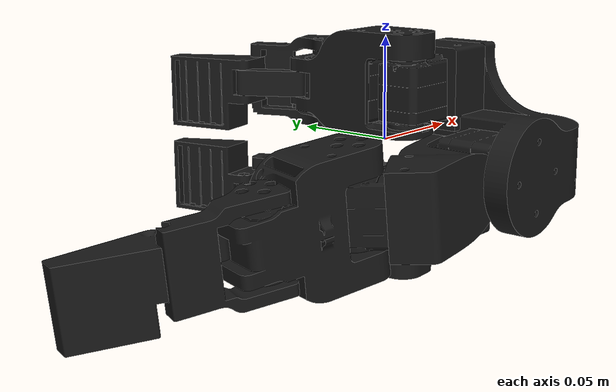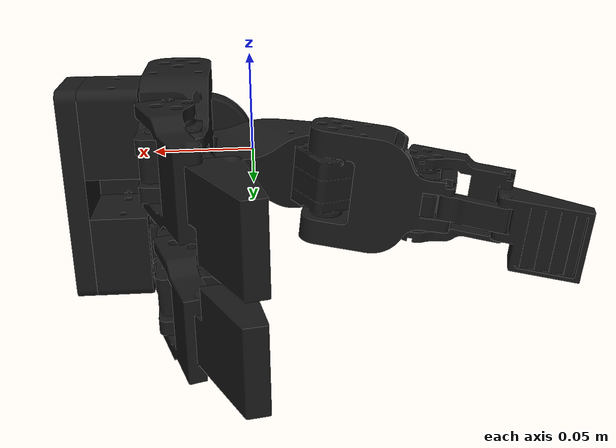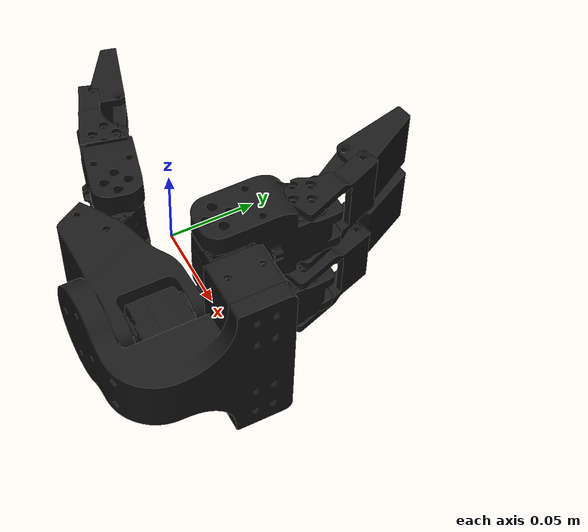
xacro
<?xml version="1.0"?>
<robot xmlns:xacro="http://www.ros.org/wiki/xacro" name="Hand">

  <!-- Materials (shared across all assemblies) -->
  <material name="Steel">
    <color rgba="0.098 0.098 0.098 1.0"/>
  </material>
  <material name="PPS">
    <color rgba="0.098 0.098 0.098 1.0"/>
  </material>

  <!-- Assembly includes -->
  <xacro:include filename="$(find Hand_description)/urdf/assemblies/Hand.urdf.xacro"/>

  <!-- Instantiate assemblies -->
  <xacro:Hand prefix=""/>

</robot>

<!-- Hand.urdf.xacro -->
<robot xmlns:xacro="http://www.ros.org/wiki/xacro" name="Hand_macro">

  <xacro:macro name="Hand" params="prefix">

    <!-- Links -->
    <link name="${prefix}base_link">
      <inertial>
        <origin xyz="0.066591 -0.028996 -0.014407" rpy="0 0 0"/>
        <mass value="1.013808"/>
        <inertia ixx="1.383921e-03" ixy="-5.654158e-04" ixz="3.315812e-08"
                 iyy="1.020927e-03" iyz="-8.614328e-08" izz="1.605222e-03"/>
      </inertial>
      <visual>
        <origin xyz="0.000000 0.000000 0.000000" rpy="0 0 0"/>
        <geometry>
          <mesh filename="package://Hand_description/meshes/Hand/base_link.dae" scale="1 1 1"/>
        </geometry>
        <material name="Steel"/>
      </visual>
      <collision>
        <origin xyz="0.000000 0.000000 0.000000" rpy="0 0 0"/>
        <geometry>
          <mesh filename="package://Hand_description/meshes/Hand/base_link_collision.stl" scale="0.01 0.01 0.01"/>
        </geometry>
      </collision>
    </link>

    <link name="${prefix}MOTOR_BASE_HOLDER_1">
      <inertial>
        <origin xyz="0.074767 -0.027619 -0.015090" rpy="0 0 0"/>
        <mass value="0.224905"/>
        <inertia ixx="6.913794e-05" ixy="1.514377e-08" ixz="-2.063933e-07"
                 iyy="4.187085e-05" iyz="2.578137e-07" izz="5.435582e-05"/>
      </inertial>
      <visual>
        <origin xyz="0.000000 0.000000 0.000000" rpy="0 0 0"/>
        <geometry>
          <mesh filename="package://Hand_description/meshes/Hand/MOTOR_BASE_HOLDER_1.dae" scale="1 1 1"/>
        </geometry>
        <material name="Steel"/>
      </visual>
      <collision>
        <origin xyz="0.000000 0.000000 0.000000" rpy="0 0 0"/>
        <geometry>
          <mesh filename="package://Hand_description/meshes/Hand/MOTOR_BASE_HOLDER_1_collision.stl" scale="0.01 0.01 0.01"/>
        </geometry>
      </collision>
    </link>

    <link name="${prefix}MOTOR_BASE_HOLDER_2">
      <inertial>
        <origin xyz="0.074767 -0.027368 -0.015090" rpy="0 0 0"/>
        <mass value="0.224905"/>
        <inertia ixx="6.913068e-05" ixy="1.725252e-07" ixz="-2.063933e-07"
                 iyy="4.187085e-05" iyz="-4.075756e-07" izz="5.434856e-05"/>
      </inertial>
      <visual>
        <origin xyz="0.000000 0.000000 0.000000" rpy="0 0 0"/>
        <geometry>
          <mesh filename="package://Hand_description/meshes/Hand/MOTOR_BASE_HOLDER_2.dae" scale="1 1 1"/>
        </geometry>
        <material name="Steel"/>
      </visual>
      <collision>
        <origin xyz="0.000000 0.000000 0.000000" rpy="0 0 0"/>
        <geometry>
          <mesh filename="package://Hand_description/meshes/Hand/MOTOR_BASE_HOLDER_2_collision.stl" scale="0.01 0.01 0.01"/>
        </geometry>
      </collision>
    </link>

    <link name="${prefix}Hand_ST3215_Servo_3">
      <inertial>
        <origin xyz="-0.012382 -0.018839 0.000000" rpy="0 0 0"/>
        <mass value="0.055721"/>
        <inertia ixx="7.436440e-06" ixy="1.103230e-07" ixz="-4.448752e-10"
                 iyy="1.201054e-05" iyz="-3.696328e-10" izz="1.401069e-05"/>
      </inertial>
      <visual>
        <origin xyz="0.000000 0.000000 0.000000" rpy="0 0 0"/>
        <geometry>
          <mesh filename="package://Hand_description/meshes/Hand/Hand_ST3215_Servo_3.dae" scale="1 1 1"/>
        </geometry>
        <material name="PPS"/>
      </visual>
      <collision>
        <origin xyz="0.000000 0.000000 0.000000" rpy="0 0 0"/>
        <geometry>
          <mesh filename="package://Hand_description/meshes/Hand/Hand_ST3215_Servo_3_collision.stl" scale="0.01 0.01 0.01"/>
        </geometry>
      </collision>
    </link>

    <link name="${prefix}Hand_ST3215_Servo">
      <inertial>
        <origin xyz="-0.012382 -0.018839 0.000000" rpy="0 0 0"/>
        <mass value="0.055721"/>
        <inertia ixx="7.436440e-06" ixy="1.103230e-07" ixz="-4.448752e-10"
                 iyy="1.201054e-05" iyz="-3.696328e-10" izz="1.401069e-05"/>
      </inertial>
      <visual>
        <origin xyz="0.000000 0.000000 0.000000" rpy="0 0 0"/>
        <geometry>
          <mesh filename="package://Hand_description/meshes/Hand/Hand_ST3215_Servo.dae" scale="1 1 1"/>
        </geometry>
        <material name="PPS"/>
      </visual>
      <collision>
        <origin xyz="0.000000 0.000000 0.000000" rpy="0 0 0"/>
        <geometry>
          <mesh filename="package://Hand_description/meshes/Hand/Hand_ST3215_Servo_collision.stl" scale="0.01 0.01 0.01"/>
        </geometry>
      </collision>
    </link>

    <link name="${prefix}Hand_ST3215_Servo_2">
      <inertial>
        <origin xyz="-0.012382 -0.018839 0.000000" rpy="0 0 0"/>
        <mass value="0.055721"/>
        <inertia ixx="7.436440e-06" ixy="1.103230e-07" ixz="-4.448752e-10"
                 iyy="1.201054e-05" iyz="-3.696328e-10" izz="1.401069e-05"/>
      </inertial>
      <visual>
        <origin xyz="0.000000 0.000000 0.000000" rpy="0 0 0"/>
        <geometry>
          <mesh filename="package://Hand_description/meshes/Hand/Hand_ST3215_Servo_2.dae" scale="1 1 1"/>
        </geometry>
        <material name="PPS"/>
      </visual>
      <collision>
        <origin xyz="0.000000 0.000000 0.000000" rpy="0 0 0"/>
        <geometry>
          <mesh filename="package://Hand_description/meshes/Hand/Hand_ST3215_Servo_2_collision.stl" scale="0.01 0.01 0.01"/>
        </geometry>
      </collision>
    </link>

    <link name="${prefix}MOTOR_BASE_HOLDER_THUMB">
      <inertial>
        <origin xyz="-0.028833 -0.000144 0.029185" rpy="0 0 0"/>
        <mass value="0.593673"/>
        <inertia ixx="3.008634e-04" ixy="6.580482e-08" ixz="1.702190e-05"
                 iyy="3.422514e-04" iyz="9.817237e-07" izz="1.660279e-04"/>
      </inertial>
      <visual>
        <origin xyz="-0.108578 0.027228 0.067178" rpy="0 0 0"/>
        <geometry>
          <mesh filename="package://Hand_description/meshes/Hand/MOTOR_BASE_HOLDER_THUMB.dae" scale="1 1 1"/>
        </geometry>
        <material name="Steel"/>
      </visual>
      <collision>
        <origin xyz="-0.108578 0.027228 0.067178" rpy="0 0 0"/>
        <geometry>
          <mesh filename="package://Hand_description/meshes/Hand/MOTOR_BASE_HOLDER_THUMB_collision.stl" scale="0.01 0.01 0.01"/>
        </geometry>
      </collision>
    </link>

    <link name="${prefix}MOTOR_SECOND_JOINT_HOLDER">
      <inertial>
        <origin xyz="-0.000258 0.008760 0.024675" rpy="0 0 0"/>
        <mass value="0.277024"/>
        <inertia ixx="2.136545e-04" ixy="8.699498e-07" ixz="2.887339e-06"
                 iyy="1.509523e-04" iyz="-3.249964e-05" izz="1.182002e-04"/>
      </inertial>
      <visual>
        <origin xyz="0.145000 0.037250 0.000056" rpy="0 0 0"/>
        <geometry>
          <mesh filename="package://Hand_description/meshes/Hand/MOTOR_SECOND_JOINT_HOLDER.dae" scale="1 1 1"/>
        </geometry>
        <material name="Steel"/>
      </visual>
      <collision>
        <origin xyz="0.145000 0.037250 0.000056" rpy="0 0 0"/>
        <geometry>
          <mesh filename="package://Hand_description/meshes/Hand/MOTOR_SECOND_JOINT_HOLDER_collision.stl" scale="0.01 0.01 0.01"/>
        </geometry>
      </collision>
    </link>

    <link name="${prefix}MOTOR_FIRST_JOINT_HOLDER">
      <inertial>
        <origin xyz="-0.000251 -0.008549 0.024959" rpy="0 0 0"/>
        <mass value="0.284999"/>
        <inertia ixx="2.141894e-04" ixy="-1.009452e-06" ixz="2.866496e-06"
                 iyy="1.524190e-04" iyz="2.484643e-05" izz="1.180930e-04"/>
      </inertial>
      <visual>
        <origin xyz="0.145000 0.000900 0.000056" rpy="0 0 0"/>
        <geometry>
          <mesh filename="package://Hand_description/meshes/Hand/MOTOR_FIRST_JOINT_HOLDER.dae" scale="1 1 1"/>
        </geometry>
        <material name="Steel"/>
      </visual>
      <collision>
        <origin xyz="0.145000 0.000900 0.000056" rpy="0 0 0"/>
        <geometry>
          <mesh filename="package://Hand_description/meshes/Hand/MOTOR_FIRST_JOINT_HOLDER_collision.stl" scale="0.01 0.01 0.01"/>
        </geometry>
      </collision>
    </link>

    <link name="${prefix}Hand_ST3215_Servo_4">
      <inertial>
        <origin xyz="-0.012382 -0.018839 0.000000" rpy="0 0 0"/>
        <mass value="0.055721"/>
        <inertia ixx="7.436440e-06" ixy="1.103230e-07" ixz="-4.448752e-10"
                 iyy="1.201054e-05" iyz="-3.696328e-10" izz="1.401069e-05"/>
      </inertial>
      <visual>
        <origin xyz="0.000000 0.000000 0.000000" rpy="0 0 0"/>
        <geometry>
          <mesh filename="package://Hand_description/meshes/Hand/Hand_ST3215_Servo_4.dae" scale="1 1 1"/>
        </geometry>
        <material name="PPS"/>
      </visual>
      <collision>
        <origin xyz="0.000000 0.000000 0.000000" rpy="0 0 0"/>
        <geometry>
          <mesh filename="package://Hand_description/meshes/Hand/Hand_ST3215_Servo_4_collision.stl" scale="0.01 0.01 0.01"/>
        </geometry>
      </collision>
    </link>

    <link name="${prefix}Hand_ST3215_Servo_5">
      <inertial>
        <origin xyz="-0.012382 -0.018839 0.000000" rpy="0 0 0"/>
        <mass value="0.055721"/>
        <inertia ixx="7.436440e-06" ixy="1.103230e-07" ixz="-4.448752e-10"
                 iyy="1.201054e-05" iyz="-3.696328e-10" izz="1.401069e-05"/>
      </inertial>
      <visual>
        <origin xyz="0.000000 0.000000 0.000000" rpy="0 0 0"/>
        <geometry>
          <mesh filename="package://Hand_description/meshes/Hand/Hand_ST3215_Servo_5.dae" scale="1 1 1"/>
        </geometry>
        <material name="PPS"/>
      </visual>
      <collision>
        <origin xyz="0.000000 0.000000 0.000000" rpy="0 0 0"/>
        <geometry>
          <mesh filename="package://Hand_description/meshes/Hand/Hand_ST3215_Servo_5_collision.stl" scale="0.01 0.01 0.01"/>
        </geometry>
      </collision>
    </link>

    <link name="${prefix}Hand_LINKAGE">
      <inertial>
        <origin xyz="-0.000074 0.006850 0.015264" rpy="0 0 0"/>
        <mass value="0.028920"/>
        <inertia ixx="3.472668e-06" ixy="2.710505e-20" ixz="-2.000900e-08"
                 iyy="3.171127e-06" iyz="-2.032879e-20" izz="1.000000e-06"/>
      </inertial>
      <visual>
        <origin xyz="0.135000 0.026050 -0.064846" rpy="0 0 0"/>
        <geometry>
          <mesh filename="package://Hand_description/meshes/Hand/Hand_LINKAGE.dae" scale="1 1 1"/>
        </geometry>
        <material name="Steel"/>
      </visual>
      <collision>
        <origin xyz="0.135000 0.026050 -0.064846" rpy="0 0 0"/>
        <geometry>
          <mesh filename="package://Hand_description/meshes/Hand/Hand_LINKAGE_collision.stl" scale="0.01 0.01 0.01"/>
        </geometry>
      </collision>
    </link>

    <link name="${prefix}Hand_ST3215_Servo_6">
      <inertial>
        <origin xyz="-0.012382 -0.018839 0.000000" rpy="0 0 0"/>
        <mass value="0.055721"/>
        <inertia ixx="7.436440e-06" ixy="1.103230e-07" ixz="-4.448752e-10"
                 iyy="1.201054e-05" iyz="-3.696328e-10" izz="1.401069e-05"/>
      </inertial>
      <visual>
        <origin xyz="0.000000 0.000000 0.000000" rpy="0 0 0"/>
        <geometry>
          <mesh filename="package://Hand_description/meshes/Hand/Hand_ST3215_Servo_6.dae" scale="1 1 1"/>
        </geometry>
        <material name="PPS"/>
      </visual>
      <collision>
        <origin xyz="0.000000 0.000000 0.000000" rpy="0 0 0"/>
        <geometry>
          <mesh filename="package://Hand_description/meshes/Hand/Hand_ST3215_Servo_6_collision.stl" scale="0.01 0.01 0.01"/>
        </geometry>
      </collision>
    </link>

    <link name="${prefix}Hand_LINKAGE_3">
      <inertial>
        <origin xyz="-0.000074 -0.006850 0.015264" rpy="0 0 0"/>
        <mass value="0.028920"/>
        <inertia ixx="3.472668e-06" ixy="2.710505e-20" ixz="-2.000900e-08"
                 iyy="3.171127e-06" iyz="-2.032879e-20" izz="1.000000e-06"/>
      </inertial>
      <visual>
        <origin xyz="0.135000 0.012350 -0.064846" rpy="0 0 0"/>
        <geometry>
          <mesh filename="package://Hand_description/meshes/Hand/Hand_LINKAGE_3.dae" scale="1 1 1"/>
        </geometry>
        <material name="Steel"/>
      </visual>
      <collision>
        <origin xyz="0.135000 0.012350 -0.064846" rpy="0 0 0"/>
        <geometry>
          <mesh filename="package://Hand_description/meshes/Hand/Hand_LINKAGE_3_collision.stl" scale="0.01 0.01 0.01"/>
        </geometry>
      </collision>
    </link>

    <link name="${prefix}MOTOR_THUMB_JOINT_HOLDER">
      <inertial>
        <origin xyz="-0.000152 0.019110 0.021914" rpy="0 0 0"/>
        <mass value="0.388888"/>
        <inertia ixx="3.488725e-04" ixy="-1.342450e-07" ixz="2.834863e-06"
                 iyy="1.904989e-04" iyz="-4.286789e-06" izz="2.308712e-04"/>
      </inertial>
      <visual>
        <origin xyz="0.145000 0.037250 0.000056" rpy="0 0 0"/>
        <geometry>
          <mesh filename="package://Hand_description/meshes/Hand/MOTOR_THUMB_JOINT_HOLDER.dae" scale="1 1 1"/>
        </geometry>
        <material name="Steel"/>
      </visual>
      <collision>
        <origin xyz="0.145000 0.037250 0.000056" rpy="0 0 0"/>
        <geometry>
          <mesh filename="package://Hand_description/meshes/Hand/MOTOR_THUMB_JOINT_HOLDER_collision.stl" scale="0.01 0.01 0.01"/>
        </geometry>
      </collision>
    </link>

    <link name="${prefix}Hand_BACK_PUSHER">
      <inertial>
        <origin xyz="-0.007343 -0.018627 0.020097" rpy="0 0 0"/>
        <mass value="0.090152"/>
        <inertia ixx="5.589585e-05" ixy="-5.631638e-08" ixz="3.739027e-06"
                 iyy="2.972674e-05" iyz="6.972420e-07" izz="3.155730e-05"/>
      </inertial>
      <visual>
        <origin xyz="0.145000 0.001000 -0.050000" rpy="0 0 0"/>
        <geometry>
          <mesh filename="package://Hand_description/meshes/Hand/Hand_BACK_PUSHER.dae" scale="1 1 1"/>
        </geometry>
        <material name="Steel"/>
      </visual>
      <collision>
        <origin xyz="0.145000 0.001000 -0.050000" rpy="0 0 0"/>
        <geometry>
          <mesh filename="package://Hand_description/meshes/Hand/Hand_BACK_PUSHER_collision.stl" scale="0.01 0.01 0.01"/>
        </geometry>
      </collision>
    </link>

    <link name="${prefix}Hand_FINGERTIP_1">
      <inertial>
        <origin xyz="0.006129 -0.012864 0.019053" rpy="0 0 0"/>
        <mass value="0.178882"/>
        <inertia ixx="5.317752e-05" ixy="-6.741018e-07" ixz="4.420193e-06"
                 iyy="3.501392e-05" iyz="4.899360e-06" izz="2.709692e-05"/>
      </inertial>
      <visual>
        <origin xyz="0.007838 -0.006730 -0.052018" rpy="0 0 0"/>
        <geometry>
          <mesh filename="package://Hand_description/meshes/Hand/Hand_FINGERTIP_1.dae" scale="1 1 1"/>
        </geometry>
        <material name="Steel"/>
      </visual>
      <collision>
        <origin xyz="0.007838 -0.006730 -0.052018" rpy="0 0 0"/>
        <geometry>
          <mesh filename="package://Hand_description/meshes/Hand/Hand_FINGERTIP_1_collision.stl" scale="0.01 0.01 0.01"/>
        </geometry>
      </collision>
    </link>

    <link name="${prefix}Hand_BACK_PUSHER_3">
      <inertial>
        <origin xyz="-0.007343 0.017623 0.020097" rpy="0 0 0"/>
        <mass value="0.090152"/>
        <inertia ixx="5.589585e-05" ixy="-5.631638e-08" ixz="3.739027e-06"
                 iyy="2.972674e-05" iyz="6.972420e-07" izz="3.155730e-05"/>
      </inertial>
      <visual>
        <origin xyz="0.145000 0.037250 -0.050000" rpy="0 0 0"/>
        <geometry>
          <mesh filename="package://Hand_description/meshes/Hand/Hand_BACK_PUSHER_3.dae" scale="1 1 1"/>
        </geometry>
        <material name="Steel"/>
      </visual>
      <collision>
        <origin xyz="0.145000 0.037250 -0.050000" rpy="0 0 0"/>
        <geometry>
          <mesh filename="package://Hand_description/meshes/Hand/Hand_BACK_PUSHER_3_collision.stl" scale="0.01 0.01 0.01"/>
        </geometry>
      </collision>
    </link>

    <link name="${prefix}FINGERTIP_2">
      <inertial>
        <origin xyz="0.006129 0.001136 -0.019053" rpy="0 0 0"/>
        <mass value="0.178882"/>
        <inertia ixx="5.317752e-05" ixy="-6.741018e-07" ixz="-4.420193e-06"
                 iyy="3.501392e-05" iyz="-4.899360e-06" izz="2.709692e-05"/>
      </inertial>
      <visual>
        <origin xyz="0.007838 0.007270 0.052018" rpy="0 0 0"/>
        <geometry>
          <mesh filename="package://Hand_description/meshes/Hand/FINGERTIP_2.dae" scale="1 1 1"/>
        </geometry>
        <material name="Steel"/>
      </visual>
      <collision>
        <origin xyz="0.007838 0.007270 0.052018" rpy="0 0 0"/>
        <geometry>
          <mesh filename="package://Hand_description/meshes/Hand/FINGERTIP_2_collision.stl" scale="0.01 0.01 0.01"/>
        </geometry>
      </collision>
    </link>

    <link name="${prefix}Hand_ST3215_Servo_7">
      <inertial>
        <origin xyz="-0.012382 -0.018839 0.000000" rpy="0 0 0"/>
        <mass value="0.055721"/>
        <inertia ixx="7.436440e-06" ixy="1.103230e-07" ixz="-4.448752e-10"
                 iyy="1.201054e-05" iyz="-3.696328e-10" izz="1.401069e-05"/>
      </inertial>
      <visual>
        <origin xyz="0.000000 0.000000 0.000000" rpy="0 0 0"/>
        <geometry>
          <mesh filename="package://Hand_description/meshes/Hand/Hand_ST3215_Servo_7.dae" scale="1 1 1"/>
        </geometry>
        <material name="PPS"/>
      </visual>
      <collision>
        <origin xyz="0.000000 0.000000 0.000000" rpy="0 0 0"/>
        <geometry>
          <mesh filename="package://Hand_description/meshes/Hand/Hand_ST3215_Servo_7_collision.stl" scale="0.01 0.01 0.01"/>
        </geometry>
      </collision>
    </link>

    <link name="${prefix}Hand_LINKAGE_2">
      <inertial>
        <origin xyz="-0.000074 -0.006850 0.015264" rpy="0 0 0"/>
        <mass value="0.028920"/>
        <inertia ixx="3.472668e-06" ixy="2.710505e-20" ixz="-2.000900e-08"
                 iyy="3.171127e-06" iyz="-2.032879e-20" izz="1.000000e-06"/>
      </inertial>
      <visual>
        <origin xyz="0.135000 0.012350 -0.064846" rpy="0 0 0"/>
        <geometry>
          <mesh filename="package://Hand_description/meshes/Hand/Hand_LINKAGE_2.dae" scale="1 1 1"/>
        </geometry>
        <material name="Steel"/>
      </visual>
      <collision>
        <origin xyz="0.135000 0.012350 -0.064846" rpy="0 0 0"/>
        <geometry>
          <mesh filename="package://Hand_description/meshes/Hand/Hand_LINKAGE_2_collision.stl" scale="0.01 0.01 0.01"/>
        </geometry>
      </collision>
    </link>

    <link name="${prefix}Hand_BACK_PUSHER_2">
      <inertial>
        <origin xyz="-0.007343 -0.018627 0.020097" rpy="0 0 0"/>
        <mass value="0.090152"/>
        <inertia ixx="5.589585e-05" ixy="-5.631638e-08" ixz="3.739027e-06"
                 iyy="2.972674e-05" iyz="6.972420e-07" izz="3.155730e-05"/>
      </inertial>
      <visual>
        <origin xyz="0.145000 0.001000 -0.050000" rpy="0 0 0"/>
        <geometry>
          <mesh filename="package://Hand_description/meshes/Hand/Hand_BACK_PUSHER_2.dae" scale="1 1 1"/>
        </geometry>
        <material name="Steel"/>
      </visual>
      <collision>
        <origin xyz="0.145000 0.001000 -0.050000" rpy="0 0 0"/>
        <geometry>
          <mesh filename="package://Hand_description/meshes/Hand/Hand_BACK_PUSHER_2_collision.stl" scale="0.01 0.01 0.01"/>
        </geometry>
      </collision>
    </link>

    <link name="${prefix}Hand_FINGERTIP_1_2">
      <inertial>
        <origin xyz="0.006129 -0.012864 0.019053" rpy="0 0 0"/>
        <mass value="0.178882"/>
        <inertia ixx="5.317752e-05" ixy="-6.741018e-07" ixz="4.420193e-06"
                 iyy="3.501392e-05" iyz="4.899360e-06" izz="2.709692e-05"/>
      </inertial>
      <visual>
        <origin xyz="0.007838 -0.006730 -0.052018" rpy="0 0 0"/>
        <geometry>
          <mesh filename="package://Hand_description/meshes/Hand/Hand_FINGERTIP_1_2.dae" scale="1 1 1"/>
        </geometry>
        <material name="Steel"/>
      </visual>
      <collision>
        <origin xyz="0.007838 -0.006730 -0.052018" rpy="0 0 0"/>
        <geometry>
          <mesh filename="package://Hand_description/meshes/Hand/Hand_FINGERTIP_1_2_collision.stl" scale="0.01 0.01 0.01"/>
        </geometry>
      </collision>
    </link>

    <!-- Joints (internal to assembly) -->
    <joint name="${prefix}Rigid_1" type="fixed">
      <parent link="${prefix}base_link"/>
      <child link="${prefix}MOTOR_BASE_HOLDER_1"/>
      <origin xyz="-0.005000 0.026570 -0.073998" rpy="-1.570796 -0.000000 0.000000"/>
    </joint>

    <joint name="${prefix}Rigid_2" type="fixed">
      <parent link="${prefix}base_link"/>
      <child link="${prefix}MOTOR_BASE_HOLDER_2"/>
      <origin xyz="-0.005000 0.026570 -0.009998" rpy="-1.570796 -0.000000 0.000000"/>
    </joint>

    <joint name="${prefix}Rigid_5" type="fixed">
      <parent link="${prefix}base_link"/>
      <child link="${prefix}Hand_ST3215_Servo_3"/>
      <origin xyz="0.037733 -0.008050 -0.014697" rpy="3.141593 0.000000 3.141593"/>
    </joint>

    <joint name="${prefix}Rigid_3" type="fixed">
      <parent link="${prefix}MOTOR_BASE_HOLDER_1"/>
      <child link="${prefix}Hand_ST3215_Servo"/>
      <origin xyz="0.038733 -0.008050 -0.014697" rpy="3.141593 0.000000 3.141593"/>
    </joint>

    <joint name="${prefix}Rigid_4" type="fixed">
      <parent link="${prefix}MOTOR_BASE_HOLDER_2"/>
      <child link="${prefix}Hand_ST3215_Servo_2"/>
      <origin xyz="0.038733 -0.008050 -0.014697" rpy="3.141593 0.000000 3.141593"/>
    </joint>

    <joint name="${prefix}Revolute_6" type="revolute">
      <parent link="${prefix}Hand_ST3215_Servo_3"/>
      <child link="${prefix}MOTOR_BASE_HOLDER_THUMB"/>
      <origin xyz="-0.000000 -0.037050 -0.000000" rpy="-1.473858 0.055821 -2.091687"/>
      <axis xyz="-0.866025 -0.000000 -0.500000"/>
      <limit lower="-1.570796" upper="1.570796" effort="100.0" velocity="1.00"/>
    </joint>

    <joint name="${prefix}Revolute_15" type="revolute">
      <parent link="${prefix}Hand_ST3215_Servo"/>
      <child link="${prefix}MOTOR_SECOND_JOINT_HOLDER"/>
      <origin xyz="-0.000000 -0.001000 -0.000000" rpy="-3.141593 -0.059969 0.000000"/>
      <axis xyz="0.000000 1.000000 -0.000000"/>
      <limit lower="-0.174533" upper="2.094395" effort="100.0" velocity="1.00"/>
    </joint>

    <joint name="${prefix}Revolute_17" type="revolute">
      <parent link="${prefix}Hand_ST3215_Servo_2"/>
      <child link="${prefix}MOTOR_FIRST_JOINT_HOLDER"/>
      <origin xyz="-0.000000 -0.037250 -0.000000" rpy="3.141593 0.000000 -0.000000"/>
      <axis xyz="-0.000000 -1.000000 0.000000"/>
      <limit lower="-2.094395" upper="0.174533" effort="100.0" velocity="1.00"/>
    </joint>

    <joint name="${prefix}Rigid_9" type="fixed">
      <parent link="${prefix}MOTOR_BASE_HOLDER_THUMB"/>
      <child link="${prefix}Hand_ST3215_Servo_4"/>
      <origin xyz="-0.067095 -0.019463 0.052481" rpy="0.000000 0.000000 3.141593"/>
    </joint>

    <joint name="${prefix}Rigid_10" type="fixed">
      <parent link="${prefix}MOTOR_SECOND_JOINT_HOLDER"/>
      <child link="${prefix}Hand_ST3215_Servo_5"/>
      <origin xyz="0.000000 0.037100 0.050056" rpy="0.000000 -1.570796 0.000000"/>
    </joint>

    <joint name="${prefix}Revolute_19" type="continuous">
      <parent link="${prefix}MOTOR_SECOND_JOINT_HOLDER"/>
      <child link="${prefix}Hand_LINKAGE"/>
      <origin xyz="0.010000 0.025050 0.065056" rpy="0.000000 -0.349066 3.141593"/>
      <axis xyz="0.000000 -1.000000 0.000000"/>
      <limit effort="100.0" velocity="1.00"/>
    </joint>

    <joint name="${prefix}Rigid_11" type="fixed">
      <parent link="${prefix}MOTOR_FIRST_JOINT_HOLDER"/>
      <child link="${prefix}Hand_ST3215_Servo_6"/>
      <origin xyz="0.000000 0.001050 0.050056" rpy="-0.000000 -1.570796 0.000000"/>
    </joint>

    <joint name="${prefix}Revolute_27" type="continuous">
      <parent link="${prefix}MOTOR_FIRST_JOINT_HOLDER"/>
      <child link="${prefix}Hand_LINKAGE_3"/>
      <origin xyz="0.010000 -0.025300 0.065056" rpy="0.000000 -0.535148 3.141593"/>
      <axis xyz="-0.000000 1.000000 -0.000000"/>
      <limit effort="100.0" velocity="1.00"/>
    </joint>

    <joint name="${prefix}Revolute_14" type="revolute">
      <parent link="${prefix}Hand_ST3215_Servo_4"/>
      <child link="${prefix}MOTOR_THUMB_JOINT_HOLDER"/>
      <origin xyz="0.000000 -0.037050 -0.000000" rpy="-0.000000 0.781790 -0.000000"/>
      <axis xyz="0.000000 1.000000 0.000000"/>
      <limit lower="-1.570796" upper="1.570796" effort="100.0" velocity="1.00"/>
    </joint>

    <joint name="${prefix}Revolute_18" type="revolute">
      <parent link="${prefix}Hand_ST3215_Servo_5"/>
      <child link="${prefix}Hand_BACK_PUSHER"/>
      <origin xyz="-0.000000 -0.001000 -0.000000" rpy="-3.141593 1.340573 -3.141593"/>
      <axis xyz="0.000000 -1.000000 0.000000"/>
      <limit lower="-1.832596" upper="0.174533" effort="100.0" velocity="1.00"/>
    </joint>

    <joint name="${prefix}revolute_1" type="continuous">
      <parent link="${prefix}Hand_LINKAGE"/>
      <child link="${prefix}Hand_FINGERTIP_1"/>
      <origin xyz="0.000000 0.014100 0.030154" rpy="-0.000000 0.230712 0.000000"/>
      <axis xyz="0.000000 1.000000 0.000000"/>
      <limit effort="100.0" velocity="1.00"/>
    </joint>

    <joint name="${prefix}Revolute_26" type="revolute">
      <parent link="${prefix}Hand_ST3215_Servo_6"/>
      <child link="${prefix}Hand_BACK_PUSHER_3"/>
      <origin xyz="0.000000 -0.037250 -0.000000" rpy="-3.141593 1.221730 -3.141593"/>
      <axis xyz="-0.000000 1.000000 0.000000"/>
      <limit lower="-0.174533" upper="1.658063" effort="100.0" velocity="1.00"/>
    </joint>

    <joint name="${prefix}Revolute" type="continuous">
      <parent link="${prefix}Hand_LINKAGE_3"/>
      <child link="${prefix}FINGERTIP_2"/>
      <origin xyz="-0.000000 -0.000000 0.030154" rpy="3.141593 0.319579 -0.000000"/>
      <axis xyz="-0.000000 -1.000000 -0.000000"/>
      <limit effort="100.0" velocity="1.00"/>
    </joint>

    <joint name="${prefix}Rigid_13" type="fixed">
      <parent link="${prefix}MOTOR_THUMB_JOINT_HOLDER"/>
      <child link="${prefix}Hand_ST3215_Servo_7"/>
      <origin xyz="-0.000000 0.037100 0.050056" rpy="0.000000 -1.570796 0.000000"/>
    </joint>

    <joint name="${prefix}Revolute_23" type="continuous">
      <parent link="${prefix}MOTOR_THUMB_JOINT_HOLDER"/>
      <child link="${prefix}Hand_LINKAGE_2"/>
      <origin xyz="0.010000 0.025050 0.065056" rpy="0.000000 0.150350 -0.000000"/>
      <axis xyz="-0.000000 1.000000 -0.000000"/>
      <limit effort="100.0" velocity="1.00"/>
    </joint>

    <joint name="${prefix}Revolute_22" type="revolute">
      <parent link="${prefix}Hand_ST3215_Servo_7"/>
      <child link="${prefix}Hand_BACK_PUSHER_2"/>
      <origin xyz="-0.000000 -0.001000 -0.000000" rpy="-3.141593 1.470661 -3.141593"/>
      <axis xyz="0.000000 -1.000000 -0.000000"/>
      <limit lower="-1.658063" upper="0.174533" effort="100.0" velocity="1.00"/>
    </joint>

    <joint name="${prefix}revolute" type="continuous">
      <parent link="${prefix}Hand_LINKAGE_2"/>
      <child link="${prefix}Hand_FINGERTIP_1_2"/>
      <origin xyz="0.000000 -0.014100 0.030154" rpy="0.000000 0.109373 -3.141593"/>
      <axis xyz="0.000000 1.000000 -0.000000"/>
      <limit effort="100.0" velocity="1.00"/>
    </joint>

    <!-- ROS 2 control: generated generic system -->
    <ros2_control name="${prefix}Hand_system" type="system">
      <hardware>
        <plugin>mock_components/GenericSystem</plugin>
        <param name="cmd_topic">sim/Hand_system/cmd</param>
        <param name="state_topic">sim/Hand_system/state</param>
      </hardware>

      <joint name="${prefix}Revolute">
        <command_interface name="position"/>
        <command_interface name="velocity"/>
        <state_interface name="position">
          <param name="initial_value">0.0</param>
        </state_interface>
        <state_interface name="velocity"/>
        <state_interface name="effort"/>
      </joint>
      <joint name="${prefix}Revolute_14">
        <command_interface name="position"/>
        <command_interface name="velocity"/>
        <state_interface name="position">
          <param name="initial_value">0.0</param>
        </state_interface>
        <state_interface name="velocity"/>
        <state_interface name="effort"/>
      </joint>
      <joint name="${prefix}Revolute_15">
        <command_interface name="position"/>
        <command_interface name="velocity"/>
        <state_interface name="position">
          <param name="initial_value">0.0</param>
        </state_interface>
        <state_interface name="velocity"/>
        <state_interface name="effort"/>
      </joint>
      <joint name="${prefix}Revolute_17">
        <command_interface name="position"/>
        <command_interface name="velocity"/>
        <state_interface name="position">
          <param name="initial_value">0.0</param>
        </state_interface>
        <state_interface name="velocity"/>
        <state_interface name="effort"/>
      </joint>
      <joint name="${prefix}Revolute_18">
        <command_interface name="position"/>
        <command_interface name="velocity"/>
        <state_interface name="position">
          <param name="initial_value">0.0</param>
        </state_interface>
        <state_interface name="velocity"/>
        <state_interface name="effort"/>
      </joint>
      <joint name="${prefix}Revolute_19">
        <command_interface name="position"/>
        <command_interface name="velocity"/>
        <state_interface name="position">
          <param name="initial_value">0.0</param>
        </state_interface>
        <state_interface name="velocity"/>
        <state_interface name="effort"/>
      </joint>
      <joint name="${prefix}Revolute_22">
        <command_interface name="position"/>
        <command_interface name="velocity"/>
        <state_interface name="position">
          <param name="initial_value">0.0</param>
        </state_interface>
        <state_interface name="velocity"/>
        <state_interface name="effort"/>
      </joint>
      <joint name="${prefix}Revolute_23">
        <command_interface name="position"/>
        <command_interface name="velocity"/>
        <state_interface name="position">
          <param name="initial_value">0.0</param>
        </state_interface>
        <state_interface name="velocity"/>
        <state_interface name="effort"/>
      </joint>
      <joint name="${prefix}Revolute_26">
        <command_interface name="position"/>
        <command_interface name="velocity"/>
        <state_interface name="position">
          <param name="initial_value">0.0</param>
        </state_interface>
        <state_interface name="velocity"/>
        <state_interface name="effort"/>
      </joint>
      <joint name="${prefix}Revolute_27">
        <command_interface name="position"/>
        <command_interface name="velocity"/>
        <state_interface name="position">
          <param name="initial_value">0.0</param>
        </state_interface>
        <state_interface name="velocity"/>
        <state_interface name="effort"/>
      </joint>
      <joint name="${prefix}Revolute_6">
        <command_interface name="position"/>
        <command_interface name="velocity"/>
        <state_interface name="position">
          <param name="initial_value">0.0</param>
        </state_interface>
        <state_interface name="velocity"/>
        <state_interface name="effort"/>
      </joint>
      <joint name="${prefix}revolute">
        <command_interface name="position"/>
        <command_interface name="velocity"/>
        <state_interface name="position">
          <param name="initial_value">0.0</param>
        </state_interface>
        <state_interface name="velocity"/>
        <state_interface name="effort"/>
      </joint>
      <joint name="${prefix}revolute_1">
        <command_interface name="position"/>
        <command_interface name="velocity"/>
        <state_interface name="position">
          <param name="initial_value">0.0</param>
        </state_interface>
        <state_interface name="velocity"/>
        <state_interface name="effort"/>
      </joint>
    </ros2_control>

  </xacro:macro>

</robot>
